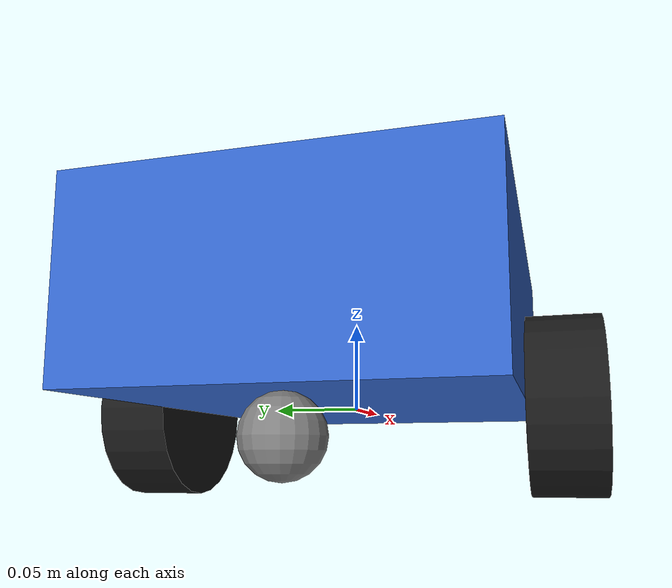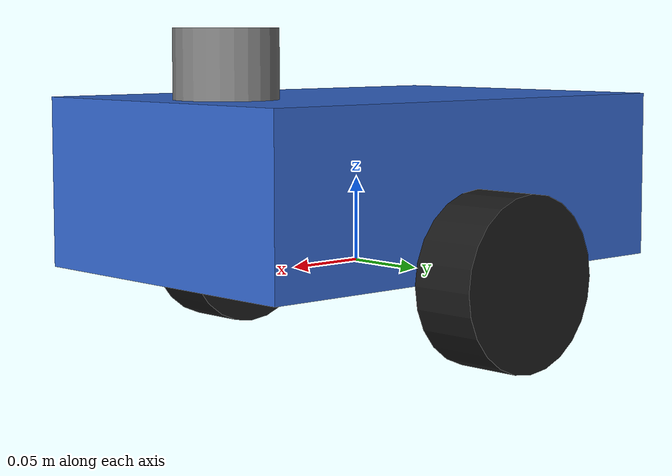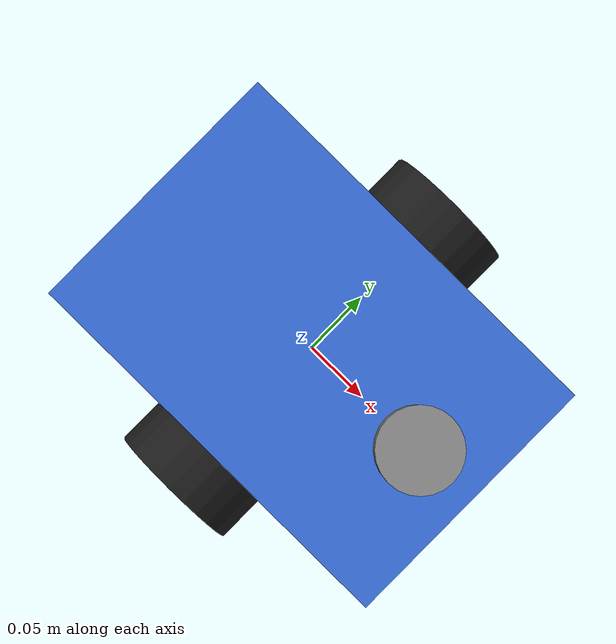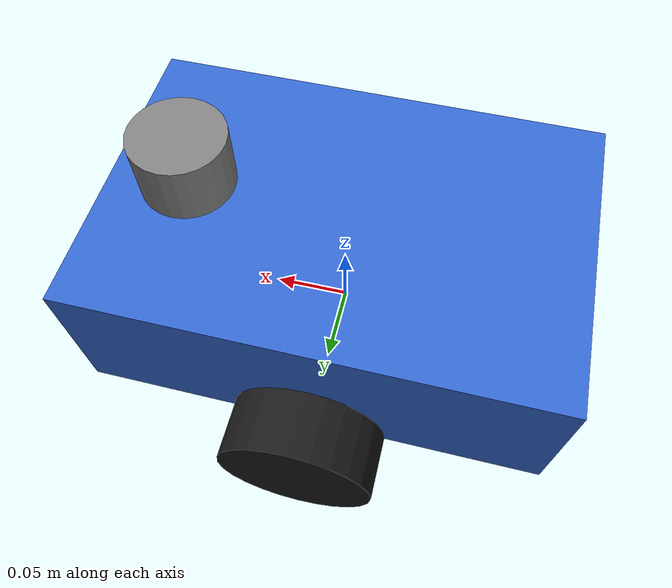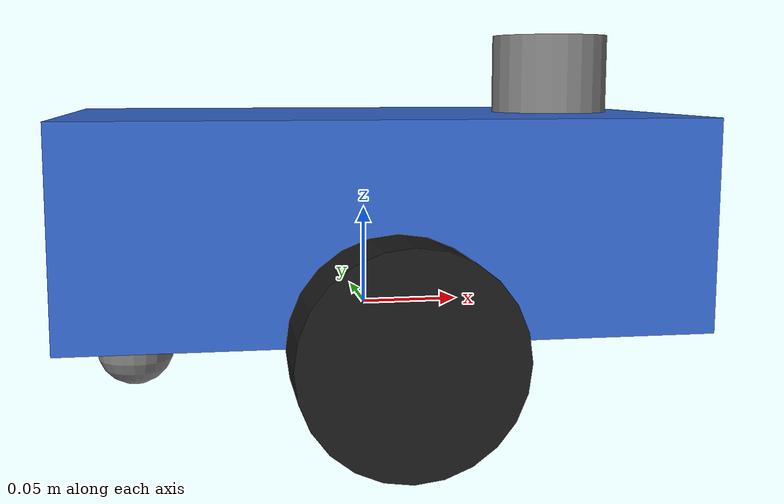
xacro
<?xml version="1.0"?>
<robot name="line_follower" xmlns:xacro="http://www.ros.org/wiki/xacro">

  <link name="base_footprint"/>

  <joint name="base_footprint_joint" type="fixed">
    <parent link="base_footprint"/>
    <child link="base_link"/>
    <origin xyz="0 0 0.05"/>
  </joint>

  <link name="base_link">
    <visual>
      <geometry><box size="0.3 0.2 0.1"/></geometry>
      <material name="blue"><color rgba="0.2 0.4 0.8 1"/></material>
    </visual>
    <collision>
      <geometry><box size="0.3 0.2 0.1"/></geometry>
    </collision>
    <inertial>
      <mass value="1.5"/>
      <inertia ixx="0.01" ixy="0" ixz="0" iyy="0.01" iyz="0" izz="0.01"/>
    </inertial>
  </link>

  <link name="left_wheel">
    <visual>
      <geometry><cylinder radius="0.05" length="0.04"/></geometry>
      <material name="black"><color rgba="0.1 0.1 0.1 1"/></material>
    </visual>
    <collision><geometry><cylinder radius="0.05" length="0.04"/></geometry></collision>
    <inertial>
      <mass value="0.3"/>
      <inertia ixx="0.001" ixy="0" ixz="0" iyy="0.001" iyz="0" izz="0.001"/>
    </inertial>
  </link>

  <joint name="left_wheel_joint" type="continuous">
    <parent link="base_link"/>
    <child link="left_wheel"/>
    <origin xyz="0.0 0.12 -0.05" rpy="-1.5708 0 0"/>
    <axis xyz="0 0 1"/>
  </joint>

  <link name="right_wheel">
    <visual>
      <geometry><cylinder radius="0.05" length="0.04"/></geometry>
      <material name="black"><color rgba="0.1 0.1 0.1 1"/></material>
    </visual>
    <collision><geometry><cylinder radius="0.05" length="0.04"/></geometry></collision>
    <inertial>
      <mass value="0.3"/>
      <inertia ixx="0.001" ixy="0" ixz="0" iyy="0.001" iyz="0" izz="0.001"/>
    </inertial>
  </link>

  <joint name="right_wheel_joint" type="continuous">
    <parent link="base_link"/>
    <child link="right_wheel"/>
    <origin xyz="0.0 -0.12 -0.05" rpy="-1.5708 0 0"/>
    <axis xyz="0 0 1"/>
  </joint>

  <link name="caster_wheel">
    <visual>
      <geometry><sphere radius="0.02"/></geometry>
      <material name="gray"><color rgba="0.5 0.5 0.5 1"/></material>
    </visual>
    <collision><geometry><sphere radius="0.02"/></geometry></collision>
    <inertial>
      <mass value="0.1"/>
      <inertia ixx="0.0001" ixy="0" ixz="0" iyy="0.0001" iyz="0" izz="0.0001"/>
    </inertial>
  </link>

  <joint name="caster_joint" type="fixed">
    <parent link="base_link"/>
    <child link="caster_wheel"/>
    <origin xyz="-0.12 0 -0.07"/>
  </joint>

  <link name="camera_link">
    <visual>
      <geometry><box size="0.02 0.04 0.02"/></geometry>
      <material name="red"><color rgba="0.8 0.1 0.1 1"/></material>
    </visual>
    <inertial>
      <mass value="0.01"/>
      <inertia ixx="0.0001" ixy="0" ixz="0" iyy="0.0001" iyz="0" izz="0.0001"/>
    </inertial>
  </link>

  <!-- Raise the camera so it has a clear view of the floor -->
  <joint name="camera_joint" type="fixed">
    <parent link="base_link"/>
    <child link="camera_link"/>
    <origin xyz="0.1 0 0.05" rpy="-1.5708 0 0"/>
  </joint>

  <link name="lidar_link">
    <visual>
      <geometry><cylinder radius="0.03" length="0.04"/></geometry>
      <material name="gray"><color rgba="0.5 0.5 0.5 1"/></material>
    </visual>
    <inertial>
      <mass value="0.1"/>
      <inertia ixx="0.0001" ixy="0" ixz="0" iyy="0.0001" iyz="0" izz="0.0001"/>
    </inertial>
  </link>

  <joint name="lidar_joint" type="fixed">
    <parent link="base_link"/>
    <child link="lidar_link"/>
    <origin xyz="0.1 0 0.07"/>
  </joint>

  <gazebo>
    <plugin name="diff_drive" filename="libgazebo_ros_diff_drive.so">
      <ros>
        <remapping>cmd_vel:=cmd_vel</remapping>
      </ros>
      <update_rate>50</update_rate>
      <left_joint>left_wheel_joint</left_joint>
      <right_joint>right_wheel_joint</right_joint>
      <wheel_separation>0.24</wheel_separation>
      <wheel_diameter>0.10</wheel_diameter>
      <max_wheel_torque>20</max_wheel_torque>
      <max_wheel_acceleration>1.0</max_wheel_acceleration>
      <publish_odom>true</publish_odom>
      <publish_odom_tf>true</publish_odom_tf>
      <publish_wheel_tf>true</publish_wheel_tf>
      <odometry_frame>odom</odometry_frame>
      <robot_base_frame>base_link</robot_base_frame>
    </plugin>
  </gazebo>

  <gazebo reference="camera_link">
    <sensor type="camera" name="camera_sensor">
      <update_rate>10</update_rate>
      <always_on>true</always_on>
      <visualize>true</visualize>
      <pose>0 0 0 0 1.5708 0</pose>
      <camera name="head">
        <horizontal_fov>1.3962634</horizontal_fov>
        <image>
          <width>320</width>
          <height>240</height>
          <format>R8G8B8</format>
        </image>
        <clip>
          <near>0.02</near>
          <far>10</far>
        </clip>
      </camera>
      <plugin name="camera_controller" filename="libgazebo_ros_camera.so">
        <ros>
          <remapping>image_raw:=/camera/image_raw</remapping>
          <remapping>camera_info:=/camera/camera_info</remapping>
        </ros>
        <frame_name>camera_link</frame_name>
      </plugin>
    </sensor>
  </gazebo>

  <gazebo reference="lidar_link">
    <sensor type="ray" name="lidar_sensor">
      <always_on>true</always_on>
      <update_rate>10</update_rate>
      <visualize>true</visualize>
      <ray>
        <scan>
          <horizontal>
            <samples>360</samples>
            <resolution>1</resolution>
            <min_angle>-3.14159</min_angle>
            <max_angle>3.14159</max_angle>
          </horizontal>
        </scan>
        <range>
          <min>0.05</min>
          <max>5.0</max>
        </range>
      </ray>
      <plugin name="lidar_controller" filename="libgazebo_ros_ray_sensor.so">
        <ros>
          <remapping>~/out:=scan</remapping>
        </ros>
        <output_type>sensor_msgs/LaserScan</output_type>
        <frame_name>lidar_link</frame_name>
      </plugin>
    </sensor>
  </gazebo>

</robot>
